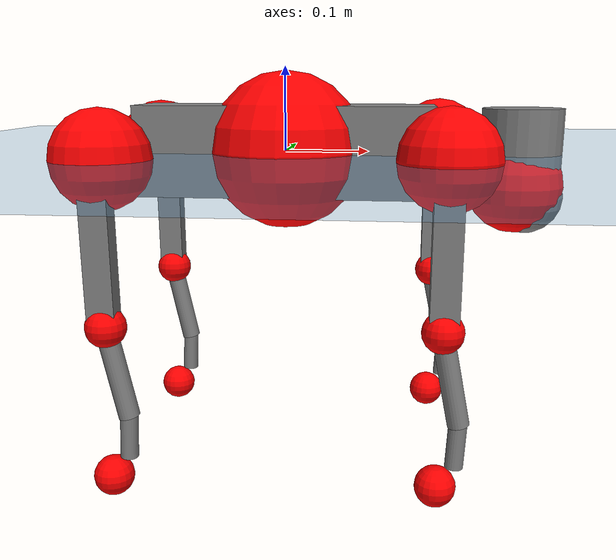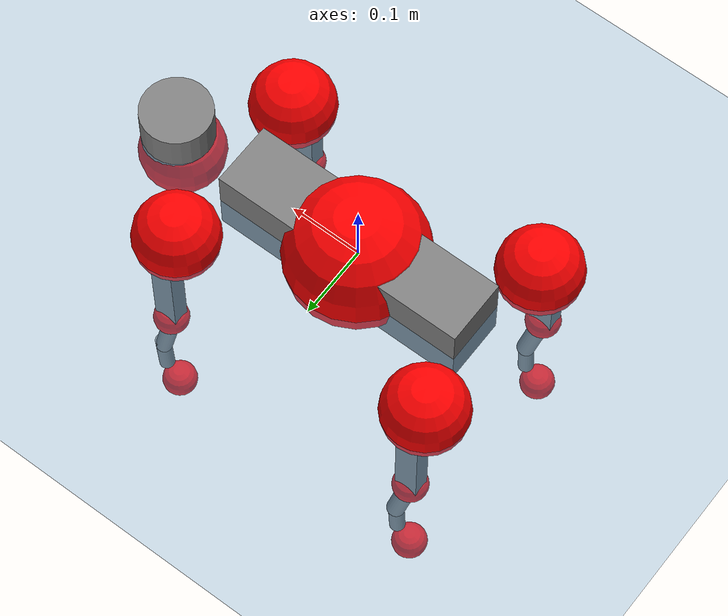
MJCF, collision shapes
<mujoco model="go2">
  <compiler angle="radian" assetdir="assets" balanceinertia="true" inertiafromgeom="false"/>

  <option timestep="0.005" density="1.2" viscosity="2e-05"/>

  <size nkey="1"/>

  <visual>
    <quality shadowsize="8192"/>
    <map shadowclip="0.5"/>
  </visual>

  <default>
    <default class="/">
      <geom contype="0" conaffinity="0" group="1" solref="-1000 -80"/>
      <site size="0.01 0.005 0.005" group="5"/>
      <general forcelimited="true" biastype="affine" gainprm="20" biasprm="0 -20 -0.5"/>
      <default class="go2">
        <joint armature="0.01" damping="0.01" frictionloss="0.2"/>
        <geom condim="1" margin="0.001"/>
        <default class="visual">
          <geom type="mesh" group="2"/>
        </default>
        <default class="collision">
          <geom group="3"/>
          <default class="foot">
            <geom size="0.022 0 0" condim="6" priority="1" friction="0.8 0.02 0.01" solimp="0.015 1 0.022"/>
          </default>
        </default>
        <default class="reward_collision_sphere">
          <geom group="5" rgba="1 0 0 1"/>
        </default>
      </default>
    </default>
  </default>

  <asset>
    <texture type="skybox" colorspace="auto" name="//unnamed_texture_0" builtin="gradient" rgb1="0.95 0.95 0.95" rgb2="0.95 0.95 0.95" width="100" height="600"/>
    <texture type="2d" colorspace="auto" name="texplane" builtin="checker" rgb1="0.345 0.575 0.748" rgb2="0.345 0.575 0.748" markrgb="1 1 1" width="512" height="512"/>
    <material name="MatPlane" class="/" texture="texplane" texuniform="true" texrepeat="2 2" specular="0.9"/>
    <material name="metal" class="/" rgba="0.9 0.95 0.95 1"/>
    <material name="black" class="/" rgba="0 0 0 1"/>
    <material name="white" class="/"/>
    <material name="gray" class="/" rgba="0.671705 0.692426 0.77427 1"/>
    <mesh name="base_0" class="/" file="base_0.obj"/>
    <mesh name="base_1" class="/" file="base_1.obj"/>
    <mesh name="base_2" class="/" file="base_2.obj"/>
    <mesh name="base_3" class="/" file="base_3.obj"/>
    <mesh name="base_4" class="/" file="base_4.obj"/>
    <mesh name="hip_0" class="/" file="hip_0.obj"/>
    <mesh name="hip_1" class="/" file="hip_1.obj"/>
    <mesh name="thigh_0" class="/" file="thigh_0.obj"/>
    <mesh name="thigh_1" class="/" file="thigh_1.obj"/>
    <mesh name="thigh_mirror_0" class="/" file="thigh_mirror_0.obj"/>
    <mesh name="thigh_mirror_1" class="/" file="thigh_mirror_1.obj"/>
    <mesh name="calf_0" class="/" file="calf_0.obj"/>
    <mesh name="calf_1" class="/" file="calf_1.obj"/>
    <mesh name="calf_mirror_0" class="/" file="calf_mirror_0.obj"/>
    <mesh name="calf_mirror_1" class="/" file="calf_mirror_1.obj"/>
    <mesh name="foot" class="/" file="foot.obj"/>
  </asset>

  <worldbody>
    <geom name="floor" class="/" size="100 100 0.125" type="plane" group="0" material="MatPlane"/>
    <light name="toplight_shadow" class="/" pos="0 0 5" dir="0.0990148 0.0990148 -0.990148" type="directional" ambient="0.04 0.04 0.04" diffuse="0.55 0.55 0.55" specular="0.12 0.12 0.12"/>
    <light name="toplight_fill" class="/" pos="0 0 5" dir="0.0990148 0.0990148 -0.990148" type="directional" castshadow="false" ambient="0.04 0.04 0.04" diffuse="0.3 0.3 0.3" specular="0.08 0.08 0.08"/>
    <body name="trunk" childclass="go2" pos="0.000708298 0.000337789 0.000840854" quat="1 7.47716e-05 0.000435218 2.72392e-06">
      <inertial pos="0.0214405 -0.000713779 -0.00499845" quat="0.000403534 0.714183 -0.0012355 0.699958" mass="5.90827" diaginertia="0.0992253 0.0956252 0.0119676"/>
      <joint name="//unnamed_joint_0" type="free" armature="0" damping="0" frictionloss="0"/>
      <geom name="//unnamed_geom_1" class="visual" material="black" mesh="base_0"/>
      <geom name="//unnamed_geom_2" class="visual" material="black" mesh="base_1"/>
      <geom name="//unnamed_geom_3" class="visual" material="black" mesh="base_2"/>
      <geom name="//unnamed_geom_4" class="visual" material="white" mesh="base_3"/>
      <geom name="//unnamed_geom_5" class="visual" material="gray" mesh="base_4"/>
      <geom name="trunk_1" class="collision" size="0.178034 0.0442482 0.0539497" type="box"/>
      <geom name="trunk_2" class="collision" size="0.0473243 0.0425918" pos="0.279722 0 0.00863202" type="cylinder"/>
      <geom name="trunk_3" class="collision" size="0.0444848" pos="0.287573 0 -0.0517921"/>
      <geom name="//unnamed_geom_9" class="reward_collision_sphere" size="0.0946485"/>
      <geom name="//unnamed_geom_10" class="reward_collision_sphere" size="0.0567891" pos="0.274814 0 -0.0388441"/>
      <site name="imu" pos="-0.0296329 -0.00572024 0.0378176" size="0.00946485"/>
      <camera name="track" pos="0 -1.98955 0" quat="0.707107 0.707107 0 0" mode="trackcom"/>
      <camera name="ego_camera" pos="0.306221 0 0.0388441" quat="-0.5 -0.5 0.5 0.5"/>
      <body name="FL_hip" pos="0.189138 0.0462611 0.00218922" quat="1 6.46045e-05 -0.000243656 -0.000270721">
        <inertial pos="-0.00436005 0.00188695 -0.000491181" quat="0.494677 0.500958 0.504749 0.499564" mass="0.578774" diaginertia="0.000810457 0.000583423 0.000228961"/>
        <joint name="FL_hip_joint" pos="0 0 0" axis="0.999999 0.00161201 -0.000213684" stiffness="0.00124268" range="-1.04079 1.05199" armature="0.00919723" damping="0.0102914" frictionloss="0.185681"/>
        <geom name="//unnamed_geom_11" class="visual" material="metal" mesh="hip_0"/>
        <geom name="//unnamed_geom_12" class="visual" material="gray" mesh="hip_1"/>
        <geom name="//unnamed_geom_13" class="collision" size="0.0435383 0.0189297" pos="0 0.079582 0" quat="0.707107 0.707107 0 0" type="cylinder"/>
        <geom name="//unnamed_geom_14" class="reward_collision_sphere" size="0.0567891" pos="0 0.0696342 0"/>
        <body name="FL_thigh" pos="-0.000623237 0.0946613 0.00187228" quat="1 4.43614e-05 -0.000180042 -0.000193823">
          <inertial pos="-0.00411426 -0.0225707 -0.0292548" quat="0.829679 0.0840061 -0.0203639 0.551508" mass="0.967167" diaginertia="0.00542978 0.00573247 0.000422181"/>
          <joint name="FL_thigh_joint" pos="0 0 0" axis="-0.0026962 0.999996 -0.00105263" range="-1.57168 3.51404" armature="0.00975948" damping="0" frictionloss="0.189142"/>
          <geom name="//unnamed_geom_15" class="visual" material="metal" mesh="thigh_0"/>
          <geom name="//unnamed_geom_16" class="visual" material="gray" mesh="thigh_1"/>
          <geom name="//unnamed_geom_17" class="collision" size="0.100801 0.0115944 0.0160903" pos="0 0 -0.0919311" quat="0.707107 0 0.707107 0" type="box"/>
          <body name="FL_calf" pos="0.000234141 0.000611617 -0.184601" quat="1 -1.72304e-05 -3.39536e-05 -2.04611e-05">
            <inertial pos="0.00618105 0.000384941 -0.122152" quat="0.710662 0.00185483 -0.00477848 0.703515" mass="0.205904" diaginertia="0.00134573 0.00141959 2.54853e-05"/>
            <joint name="FL_calf_joint" pos="0 0 0" axis="-0.00596925 0.999978 -0.00304404" range="-2.7409 -0.837143" armature="0.00945853" damping="0.00428294" frictionloss="0.187609"/>
            <geom name="//unnamed_geom_18" class="visual" material="gray" mesh="calf_0"/>
            <geom name="//unnamed_geom_19" class="visual" material="black" mesh="calf_1"/>
            <geom name="FL_calf0" class="collision" size="0.0113578 0.0567891" pos="0.00785183 0 -0.0517921" quat="0.994493 0 -0.104807 0" type="cylinder"/>
            <geom name="//unnamed_geom_21" class="collision" size="0.0104113 0.0307608" pos="0.0196296 0 -0.127754" quat="0.999688 0 0.0249974 0" type="cylinder"/>
            <geom name="//unnamed_geom_22" class="visual" pos="0 0 -0.183862" quat="1 0 0 0" material="black" mesh="foot"/>
            <geom name="FL_foot" class="foot" size="0.0169013" pos="-0.00196296 0 -0.183862"/>
            <geom name="//unnamed_geom_24" class="reward_collision_sphere" size="0.0236621"/>
            <geom name="//unnamed_geom_25" class="reward_collision_sphere" size="0.0236621" pos="-0.00196296 0 -0.183862"/>
            <site name="FL_foot" class="foot" pos="-0.00196296 0 -0.183862" size="0.00946485"/>
          </body>
        </body>
      </body>
      <body name="FR_hip" pos="0.189403 -0.0464835 0.00128078" quat="1 -8.62448e-05 -8.59709e-05 -8.53298e-05">
        <inertial pos="-0.0054752 -0.00102387 -0.000679321" quat="0.498959 0.503702 0.499168 0.498152" mass="0.58039" diaginertia="0.000820285 0.000581209 0.000233261"/>
        <joint name="FR_hip_joint" pos="0 0 0" axis="0.999995 0.00293892 0.000820873" stiffness="0.00490337" range="-1.062 1.04372" armature="0.00947436" damping="0.0141923" frictionloss="0.188244"/>
        <geom name="//unnamed_geom_26" class="visual" pos="0 1.1462e-09 4.91629e-08" quat="4.63268e-05 1 0 0" material="metal" mesh="hip_0"/>
        <geom name="//unnamed_geom_27" class="visual" pos="0 1.85813e-09 -1.21599e-07" quat="4.63268e-05 1 0 0" material="gray" mesh="hip_1"/>
        <geom name="//unnamed_geom_28" class="collision" size="0.0435383 0.0189297" pos="0 -0.079582 0" quat="0.707107 0.707107 0 0" type="cylinder"/>
        <geom name="//unnamed_geom_29" class="reward_collision_sphere" size="0.0567891" pos="0 -0.0696342 0"/>
        <body name="FR_thigh" pos="-0.000679183 -0.0944852 0.00123035" quat="1 -1.06651e-06 1.78333e-06 9.43848e-07">
          <inertial pos="-0.003563 0.0222278 -0.0287625" quat="0.54955 -0.0243224 0.0811428 0.831155" mass="0.984389" diaginertia="0.0055177 0.00572851 0.000423912"/>
          <joint name="FR_thigh_joint" pos="0 0 0" axis="0.00214738 -0.999998 0.000165052" range="-3.5033 1.56174" armature="0.00964133" damping="0.0137117" frictionloss="0.193687"/>
          <geom name="//unnamed_geom_30" class="visual" material="metal" mesh="thigh_mirror_0"/>
          <geom name="//unnamed_geom_31" class="visual" material="gray" mesh="thigh_mirror_1"/>
          <geom name="//unnamed_geom_32" class="collision" size="0.100801 0.0115944 0.0160903" pos="0 0 -0.0919311" quat="0.707107 0 0.707107 0" type="box"/>
          <body name="FR_calf" pos="-0.000447402 -5.10909e-05 -0.183336" quat="1 -2.74899e-05 3.31965e-05 2.63704e-05">
            <inertial pos="0.00668146 0.00084107 -0.121044" quat="0.705136 -0.00830108 0.00103475 0.709023" mass="0.202624" diaginertia="0.00132694 0.00142216 2.49734e-05"/>
            <joint name="FR_calf_joint" pos="0 0 0" axis="0.00308062 -0.999994 0.00165041" range="0.840379 2.73851" armature="0.00916984" damping="0.00734159" frictionloss="0.189996"/>
            <geom name="//unnamed_geom_33" class="visual" material="gray" mesh="calf_mirror_0"/>
            <geom name="//unnamed_geom_34" class="visual" material="black" mesh="calf_mirror_1"/>
            <geom name="FR_calf0" class="collision" size="0.0123043 0.0567891" pos="0.00981479 0 -0.0517921" quat="0.995004 0 -0.0998334 0" type="cylinder"/>
            <geom name="//unnamed_geom_36" class="collision" size="0.0104113 0.0307608" pos="0.0196296 0 -0.127754" quat="0.999688 0 0.0249974 0" type="cylinder"/>
            <geom name="//unnamed_geom_37" class="visual" pos="0 0 -0.183862" quat="1 0 0 0" material="black" mesh="foot"/>
            <geom name="FR_foot" class="foot" size="0.0224211" pos="-0.00196296 0 -0.183862"/>
            <geom name="//unnamed_geom_39" class="reward_collision_sphere" size="0.0236621"/>
            <geom name="//unnamed_geom_40" class="reward_collision_sphere" size="0.0236621" pos="-0.00196296 0 -0.183862"/>
            <site name="FR_foot" class="foot" pos="-0.00196296 0 -0.183862" size="0.00946485"/>
          </body>
        </body>
      </body>
      <body name="RL_hip" pos="-0.190198 0.0473125 -0.00131603" quat="1 0.000357533 -0.000240408 7.93433e-05">
        <inertial pos="0.00541753 0.00215492 -0.000917112" quat="0.504508 0.499185 0.497101 0.499177" mass="0.576074" diaginertia="0.000803497 0.000585318 0.000228949"/>
        <joint name="RL_hip_joint" pos="0 0 0" axis="-0.999886 -0.00073752 0.0151098" stiffness="0.0021193" range="-1.02877 1.05075" armature="0.00943474" damping="0.00886993" frictionloss="0.191838"/>
        <geom name="//unnamed_geom_41" class="visual" pos="-1.03038e-09 0 -2.01978e-07" quat="4.63268e-05 0 1 0" material="metal" mesh="hip_0"/>
        <geom name="//unnamed_geom_42" class="visual" pos="-1.67037e-09 0 -1.79125e-07" quat="4.63268e-05 0 1 0" material="gray" mesh="hip_1"/>
        <geom name="//unnamed_geom_43" class="collision" size="0.0435383 0.0189297" pos="0 0.079582 0" quat="0.707107 0.707107 0 0" type="cylinder"/>
        <geom name="//unnamed_geom_44" class="reward_collision_sphere" size="0.0567891" pos="0 0.0696342 0"/>
        <body name="RL_thigh" pos="-0.000146872 0.0943711 -0.000967737" quat="1 -3.65795e-05 -1.44506e-06 3.04202e-05">
          <inertial pos="-0.00368287 -0.0217831 -0.0294105" quat="0.829867 0.0855701 -0.0199392 0.550999" mass="0.964116" diaginertia="0.00534336 0.00564488 0.000416479"/>
          <joint name="RL_thigh_joint" pos="0 0 0" axis="-9.39611e-05 1 9.19906e-05" stiffness="0.000246325" range="-0.528863 4.53017" armature="0.00930417" damping="0.0112279" frictionloss="0.187527"/>
          <geom name="//unnamed_geom_45" class="visual" material="metal" mesh="thigh_0"/>
          <geom name="//unnamed_geom_46" class="visual" material="gray" mesh="thigh_1"/>
          <geom name="//unnamed_geom_47" class="collision" size="0.100801 0.0115944 0.0160903" pos="0 0 -0.0919311" quat="0.707107 0 0.707107 0" type="box"/>
          <body name="RL_calf" pos="0.00121206 -0.00142645 -0.183517" quat="1 0.000143152 -7.76518e-05 0.000136307">
            <inertial pos="0.00525558 0.000480058 -0.122775" quat="0.711004 0.00169238 -0.00616981 0.703159" mass="0.205962" diaginertia="0.00135826 0.00141602 2.54983e-05"/>
            <joint name="RL_calf_joint" pos="0 0 0" axis="-0.00613702 0.999933 0.00978296" range="-2.72053 -0.837236" armature="0.00962231" damping="0.00078461" frictionloss="0.1808"/>
            <geom name="//unnamed_geom_48" class="visual" material="gray" mesh="calf_0"/>
            <geom name="//unnamed_geom_49" class="visual" material="black" mesh="calf_1"/>
            <geom name="RL_calf0" class="collision" size="0.0123043 0.0567891" pos="0.00981479 0 -0.0517921" quat="0.995004 0 -0.0998334 0" type="cylinder"/>
            <geom name="//unnamed_geom_51" class="collision" size="0.0104113 0.0307608" pos="0.0196296 0 -0.127754" quat="0.999688 0 0.0249974 0" type="cylinder"/>
            <geom name="//unnamed_geom_52" class="visual" pos="0 0 -0.183862" quat="1 0 0 0" material="black" mesh="foot"/>
            <geom name="RL_foot" class="foot" size="0.0186375" pos="-0.00196296 0 -0.183862"/>
            <geom name="//unnamed_geom_54" class="reward_collision_sphere" size="0.0236621"/>
            <geom name="//unnamed_geom_55" class="reward_collision_sphere" size="0.0236621" pos="-0.00196296 0 -0.183862"/>
            <site name="RL_foot" class="foot" pos="-0.00196296 0 -0.183862" size="0.00946485"/>
          </body>
        </body>
      </body>
      <body name="RR_hip" pos="-0.189945 -0.0469989 -0.00170356" quat="1 -7.67542e-05 4.94237e-05 -0.000248923">
        <inertial pos="0.00514822 -0.00186602 0.000747889" quat="0.499299 0.496851 0.498456 0.505353" mass="0.563716" diaginertia="0.000791255 0.000570309 0.00022728"/>
        <joint name="RR_hip_joint" pos="0 0 0" axis="-0.999992 -0.00169765 0.00367302" range="-1.05649 1.05473" armature="0.00991227" damping="0.00348467" frictionloss="0.187092"/>
        <geom name="//unnamed_geom_56" class="visual" pos="1.03084e-09 1.1462e-09 -2.51141e-07" quat="2.14617e-09 4.63268e-05 4.63268e-05 -1" material="metal" mesh="hip_0"/>
        <geom name="//unnamed_geom_57" class="visual" pos="1.66923e-09 1.85813e-09 -5.75268e-08" quat="2.14617e-09 4.63268e-05 4.63268e-05 -1" material="gray" mesh="hip_1"/>
        <geom name="//unnamed_geom_58" class="collision" size="0.0435383 0.0189297" pos="0 -0.079582 0" quat="0.707107 0.707107 0 0" type="cylinder"/>
        <geom name="//unnamed_geom_59" class="reward_collision_sphere" size="0.0567891" pos="0 -0.0696342 0"/>
        <body name="RR_thigh" pos="0.000631607 -0.0952023 -0.000769168" quat="1 2.88798e-06 6.6868e-06 2.71284e-06">
          <inertial pos="-0.00263068 0.0215754 -0.0282752" quat="0.551387 -0.0203919 0.085061 0.829651" mass="0.983039" diaginertia="0.00538708 0.0057115 0.000420811"/>
          <joint name="RR_thigh_joint" pos="0 0 0" axis="0.0017433 -0.999945 0.0103283" range="-4.54979 0.529281" armature="0.00936207" damping="0.0130978" frictionloss="0.191198"/>
          <geom name="//unnamed_geom_60" class="visual" material="metal" mesh="thigh_mirror_0"/>
          <geom name="//unnamed_geom_61" class="visual" material="gray" mesh="thigh_mirror_1"/>
          <geom name="//unnamed_geom_62" class="collision" size="0.100801 0.0115944 0.0160903" pos="0 0 -0.0919311" quat="0.707107 0 0.707107 0" type="box"/>
          <body name="RR_calf" pos="0.00165641 -8.07188e-05 -0.184531" quat="1 -3.92893e-05 6.31132e-05 -6.94707e-05">
            <inertial pos="0.00581904 0.000606507 -0.122174" quat="0.702319 -0.00365378 0.000940611 0.711853" mass="0.208219" diaginertia="0.00136277 0.00144324 2.56336e-05"/>
            <joint name="RR_calf_joint" pos="0 0 0" axis="-0.00427251 -0.999971 0.00636673" range="0.833444 2.70817" armature="0.00978465" damping="0.00523061" frictionloss="0.188205"/>
            <geom name="//unnamed_geom_63" class="visual" material="gray" mesh="calf_mirror_0"/>
            <geom name="//unnamed_geom_64" class="visual" material="black" mesh="calf_mirror_1"/>
            <geom name="RR_calf0" class="collision" size="0.0123043 0.0567891" pos="0.00981479 0 -0.0517921" quat="0.995004 0 -0.0998334 0" type="cylinder"/>
            <geom name="//unnamed_geom_66" class="collision" size="0.0104113 0.0307608" pos="0.0196296 0 -0.127754" quat="0.999688 0 0.0249974 0" type="cylinder"/>
            <geom name="//unnamed_geom_67" class="visual" pos="0 0 -0.183862" quat="1 0 0 0" material="black" mesh="foot"/>
            <geom name="RR_foot" class="foot" size="0.0228124" pos="-0.00196296 0 -0.183862"/>
            <geom name="//unnamed_geom_69" class="reward_collision_sphere" size="0.0236621"/>
            <geom name="//unnamed_geom_70" class="reward_collision_sphere" size="0.0236621" pos="-0.00196296 0 -0.183862"/>
            <site name="RR_foot" class="foot" pos="-0.00196296 0 -0.183862" size="0.00946485"/>
          </body>
        </body>
      </body>
    </body>
  </worldbody>

  <contact>
    <pair class="/" geom1="floor" geom2="FL_foot" name="//unnamed_contact_0"/>
    <pair class="/" geom1="floor" geom2="FR_foot" name="//unnamed_contact_1"/>
    <pair class="/" geom1="floor" geom2="RL_foot" name="//unnamed_contact_2"/>
    <pair class="/" geom1="floor" geom2="RR_foot" name="//unnamed_contact_3"/>
  </contact>

  <actuator>
    <general name="FL_hip" class="/" joint="FL_hip_joint" forcerange="-22.7359 22.7359" gainprm="19.0068" biasprm="0 -19.0068 -0.47231"/>
    <general name="FL_thigh" class="/" joint="FL_thigh_joint" forcerange="-22.4705 22.4705" gainprm="19.0068" biasprm="0 -19.0068 -0.47231"/>
    <general name="FL_calf" class="/" joint="FL_calf_joint" forcerange="-42.3194 42.3194" gainprm="19.0068" biasprm="0 -19.0068 -0.47231"/>
    <general name="FR_hip" class="/" joint="FR_hip_joint" forcerange="-22.319 22.319" gainprm="19.0068" biasprm="0 -19.0068 -0.47231"/>
    <general name="FR_thigh" class="/" joint="FR_thigh_joint" forcerange="-21.6121 21.6121" gainprm="19.0068" biasprm="0 -19.0068 -0.47231"/>
    <general name="FR_calf" class="/" joint="FR_calf_joint" forcerange="-45.1452 45.1452" gainprm="19.0068" biasprm="0 -19.0068 -0.47231"/>
    <general name="RL_hip" class="/" joint="RL_hip_joint" forcerange="-22.8601 22.8601" gainprm="19.0068" biasprm="0 -19.0068 -0.47231"/>
    <general name="RL_thigh" class="/" joint="RL_thigh_joint" forcerange="-21.7704 21.7704" gainprm="19.0068" biasprm="0 -19.0068 -0.47231"/>
    <general name="RL_calf" class="/" joint="RL_calf_joint" forcerange="-42.3739 42.3739" gainprm="19.0068" biasprm="0 -19.0068 -0.47231"/>
    <general name="RR_hip" class="/" joint="RR_hip_joint" forcerange="-22.6754 22.6754" gainprm="19.0068" biasprm="0 -19.0068 -0.47231"/>
    <general name="RR_thigh" class="/" joint="RR_thigh_joint" forcerange="-21.5333 21.5333" gainprm="19.0068" biasprm="0 -19.0068 -0.47231"/>
    <general name="RR_calf" class="/" joint="RR_calf_joint" forcerange="-43.7263 43.7263" gainprm="19.0068" biasprm="0 -19.0068 -0.47231"/>
  </actuator>

  <sensor>
    <gyro site="imu" name="imu_angular_velocity"/>
    <velocimeter site="imu" name="imu_linear_velocity"/>
    <framelinvel objtype="site" objname="FL_foot" name="FL_foot_global_linear_velocity"/>
    <framelinvel objtype="site" objname="FR_foot" name="FR_foot_global_linear_velocity"/>
    <framelinvel objtype="site" objname="RL_foot" name="RL_foot_global_linear_velocity"/>
    <framelinvel objtype="site" objname="RR_foot" name="RR_foot_global_linear_velocity"/>
  </sensor>

  <keyframe>
    <key name="home" qpos="0 0 0.325 1 0 0 0 0.1 0.8 -1.5 -0.1 -0.8 1.5 -0.1 0.8 -1.5 0.1 -0.8 1.5"/>
  </keyframe>
</mujoco>
